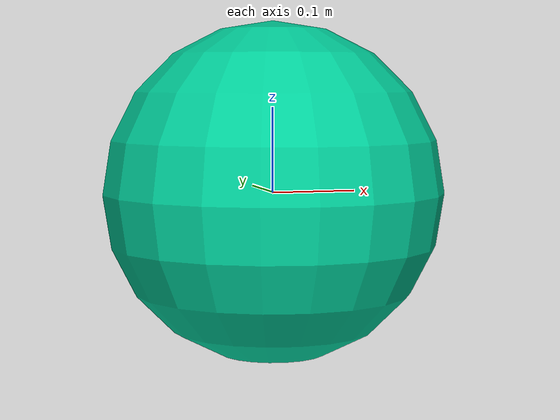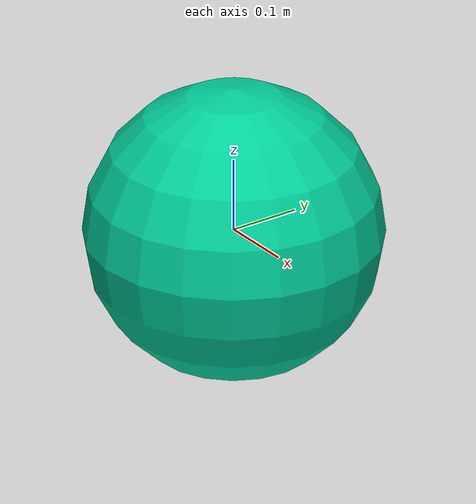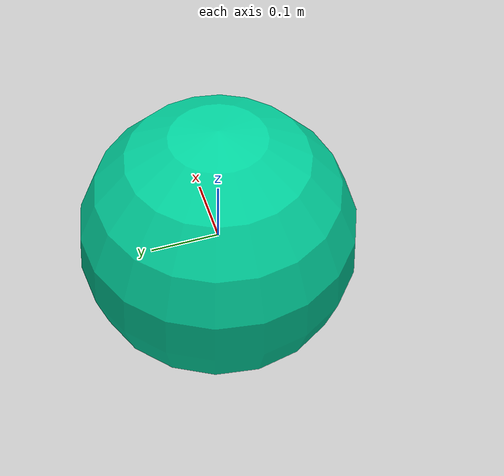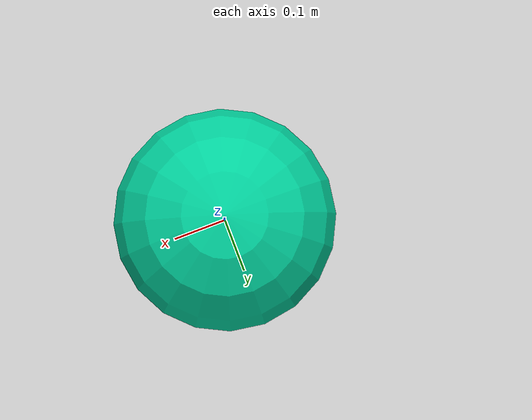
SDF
<?xml version='1.0'?>
<sdf version='1.6'>
  <model name='sphere_target'>
    <link name='link_0'>
      <pose frame=''>0 0 0 0 -0 0</pose>
      <inertial>
        <mass>0.1</mass>
        <inertia>
          <ixx>0.07</ixx>
          <ixy>0</ixy>
          <ixz>0</ixz>
          <iyy>0.1</iyy>
          <iyz>0</iyz>
          <izz>0.1</izz>
        </inertia>
        <pose frame=''>0 0 0 0 -0 0</pose>
      </inertial>
      <gravity>0</gravity>
      <self_collide>0</self_collide>
      <kinematic>0</kinematic>
      <visual name='ModelPreview_0::link_0::visual_7'>
        <pose frame=''>0 0 0 0 -0 0</pose>
        <geometry>
          <sphere>
            <radius>0.201</radius>
          </sphere>
        </geometry>
        <material>
          <lighting>1</lighting>
          <script>
            <uri>file://media/materials/scripts/gazebo.material</uri>
            <name>Gazebo/Grey</name>
          </script>
          <ambient>0 0.8 0.6 1</ambient>
          <diffuse>0 0.8 0.6 1</diffuse>
          <specular>0 0.8 0.6 1</specular>
          <emissive>0 0 0 1</emissive>
          <shader type='vertex'>
            <normal_map>__default__</normal_map>
          </shader>
        </material>
        <cast_shadows>1</cast_shadows>
        <transparency>0</transparency>
      </visual>
      <visual name='ModelPreview_0::link_0::visual_6'>
        <pose frame=''>0 0 0 0 -0 0</pose>
        <geometry>
          <sphere>
            <radius>0.201</radius>
          </sphere>
        </geometry>
        <material>
          <lighting>1</lighting>
          <script>
            <uri>file://media/materials/scripts/gazebo.material</uri>
            <name>Gazebo/Grey</name>
          </script>
          <ambient>0 0.8 0.6 1</ambient>
          <diffuse>0 0.8 0.6 1</diffuse>
          <specular>0 0.8 0.6 1</specular>
          <emissive>0 0 0 1</emissive>
          <shader type='vertex'>
            <normal_map>__default__</normal_map>
          </shader>
        </material>
        <cast_shadows>1</cast_shadows>
        <transparency>1</transparency>
      </visual>
      <visual name='visual'>
        <pose frame=''>0 0 0 0 -0 0</pose>
        <geometry>
          <sphere>
            <radius>0.201</radius>
          </sphere>
        </geometry>
        <material>
          <lighting>1</lighting>
          <script>
            <uri>file://media/materials/scripts/gazebo.material</uri>
            <name>Gazebo/Grey</name>
          </script>
          <ambient>0 0.8 0.6 1</ambient>
          <diffuse>0 0.8 0.6 1</diffuse>
          <specular>0 0.8 0.6 1</specular>
          <emissive>0 0.8 0.6 1</emissive>
          <shader type='vertex'>
            <normal_map>__default__</normal_map>
          </shader>
        </material>
        <cast_shadows>1</cast_shadows>
        <transparency>0</transparency>
      </visual>
      <visual name='ModelPreview_0::link_0::visual_5'>
        <pose frame=''>0 0 0 0 -0 0</pose>
        <geometry>
          <sphere>
            <radius>0.201</radius>
          </sphere>
        </geometry>
        <material>
          <lighting>1</lighting>
          <script>
            <uri>file://media/materials/scripts/gazebo.material</uri>
            <name>Gazebo/Grey</name>
          </script>
          <ambient>0 0.8 0.6 1</ambient>
          <diffuse>0 0.8 0.6 1</diffuse>
          <specular>0 0.8 0.6 1</specular>
          <emissive>0 0 0 1</emissive>
          <shader type='vertex'>
            <normal_map>__default__</normal_map>
          </shader>
        </material>
        <cast_shadows>1</cast_shadows>
        <transparency>0</transparency>
      </visual>
    </link>
    <static>0</static>
    <allow_auto_disable>1</allow_auto_disable>
  </model>
</sdf>
